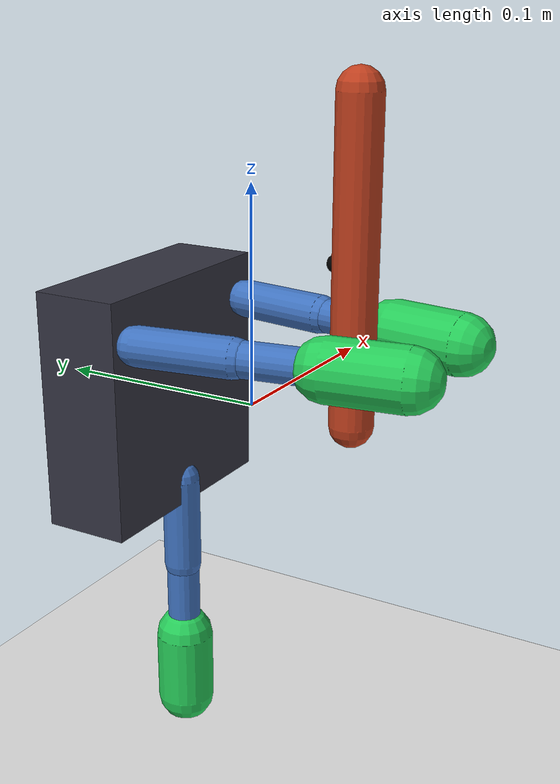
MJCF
<mujoco model="three_finger_rod_revolute">
  <!-- Arm A: rod spins on a hard hinge about its long axis; tip fixed in world. -->
  <compiler angle="radian" autolimits="true"/>
  <option timestep="0.002" integrator="implicitfast" iterations="80" ls_iterations="40" cone="elliptic" gravity="0 0 -9.81"/>
  <size njmax="1000" nconmax="200"/>
  <default>
    <joint damping="0.15" armature="0.01"/>
    <geom friction="1.8 0.05 0.001" condim="4" solref="0.008 1" solimp="0.95 0.99 0.001"/>
    <position kp="28" kv="2.5" ctrllimited="true" ctrlrange="-1.5 1.5"/>
  </default>
  <asset>
    <material name="rodmat" rgba="0.75 0.25 0.12 1"/>
    <material name="finger" rgba="0.25 0.45 0.75 1"/>
    <material name="tip" rgba="0.15 0.8 0.35 1"/>
  </asset>
  <worldbody>
    <light pos="0 -0.5 0.8" dir="0 0.4 -1" diffuse="0.8 0.8 0.8"/>
    <geom name="floor" type="plane" size="1 1 0.1" pos="0 0 -0.20" rgba="0.9 0.9 0.9 1"/>
    <body name="palm" pos="0 0 0">
      <geom type="box" size="0.055 0.02 0.055" pos="0 0.055 0" rgba="0.2 0.2 0.25 1" contype="0" conaffinity="0"/>
      <body name="finger0" pos="-0.045 0.03 0.035" euler="0 0 0.15">
        <joint name="f0_j0" axis="0 0 1" range="-1.2 1.2"/>
        <geom type="capsule" fromto="0 0 0 0 -0.045 0" size="0.009" material="finger"/>
        <body pos="0 -0.045 0"><joint name="f0_j1" axis="0 0 1" range="-1.5 1.2"/>
          <geom type="capsule" fromto="0 0 0 0 -0.04 0" size="0.008" material="finger"/>
          <body pos="0 -0.04 0"><joint name="f0_j2" axis="0 0 1" range="-1.5 1.2"/>
            <geom name="tip0" type="capsule" fromto="0 0 0 0 -0.035 0" size="0.014" material="tip"/>
            <site name="tip0_site" pos="0 -0.035 0" size="0.004"/>
          </body>
        </body>
      </body>
      <body name="finger1" pos="0.045 0.03 0.035" euler="0 0 -0.15">
        <joint name="f1_j0" axis="0 0 1" range="-1.2 1.2"/>
        <geom type="capsule" fromto="0 0 0 0 -0.045 0" size="0.009" material="finger"/>
        <body pos="0 -0.045 0"><joint name="f1_j1" axis="0 0 1" range="-1.5 1.2"/>
          <geom type="capsule" fromto="0 0 0 0 -0.04 0" size="0.008" material="finger"/>
          <body pos="0 -0.04 0"><joint name="f1_j2" axis="0 0 1" range="-1.5 1.2"/>
            <geom name="tip1" type="capsule" fromto="0 0 0 0 -0.035 0" size="0.014" material="tip"/>
            <site name="tip1_site" pos="0 -0.035 0" size="0.004"/>
          </body>
        </body>
      </body>
      <body name="finger2" pos="0 0.04 -0.045" euler="1.5708 0 0">
        <joint name="f2_j0" axis="1 0 0" range="-1.2 1.2"/>
        <geom type="capsule" fromto="0 0 0 0 -0.045 0" size="0.009" material="finger"/>
        <body pos="0 -0.045 0"><joint name="f2_j1" axis="0 0 1" range="-1.5 1.2"/>
          <geom type="capsule" fromto="0 0 0 0 -0.04 0" size="0.008" material="finger"/>
          <body pos="0 -0.04 0"><joint name="f2_j2" axis="0 0 1" range="-1.5 1.2"/>
            <geom name="tip2" type="capsule" fromto="0 0 0 0 -0.035 0" size="0.014" material="tip"/>
            <site name="tip2_site" pos="0 -0.035 0" size="0.004"/>
          </body>
        </body>
      </body>
    </body>
    <!-- Mount at hang tip; hinge axis world -Z = rod long axis after Ry90. -->
    <body name="rod_mount" pos="0 -0.05 0.07">
      <geom type="sphere" size="0.004" rgba="0.4 0.4 0.4 0.3" contype="0" conaffinity="0"/>
      <body name="rod" pos="0 0 0" quat="0.7071068 0 0.7071068 0">
        <!-- Local +x is rod long axis; hinge at tip (local -x). -->
        <joint name="rod_hinge" type="hinge" pos="-0.07 0 0" axis="1 0 0" damping="0.02" armature="0.001"/>
        <geom name="rod_geom" type="capsule" fromto="-0.07 0 0 0.07 0 0" size="0.01" density="350" material="rodmat"/>
        <site name="rod_tip" pos="-0.07 0 0" size="0.005" rgba="1 1 0 1"/>
        <site name="rod_axis_mark" pos="0 0.009 0" size="0.004" rgba="0 0 0 1"/>
      </body>
    </body>
    <site name="tip_target" pos="0 -0.05 0.07" size="0.007" rgba="1 0 1 0.45"/>
  </worldbody>
  <actuator>
    <position name="a0" joint="f0_j0"/><position name="a1" joint="f0_j1"/><position name="a2" joint="f0_j2"/>
    <position name="a3" joint="f1_j0"/><position name="a4" joint="f1_j1"/><position name="a5" joint="f1_j2"/>
    <position name="a6" joint="f2_j0"/><position name="a7" joint="f2_j1"/><position name="a8" joint="f2_j2"/>
  </actuator>
  <sensor>
    <touch name="touch0" site="tip0_site"/><touch name="touch1" site="tip1_site"/><touch name="touch2" site="tip2_site"/>
    <framepos name="rod_tip_pos" objtype="site" objname="rod_tip"/>
    <framequat name="rod_quat" objtype="body" objname="rod"/>
    <framelinvel name="rod_linvel" objtype="body" objname="rod"/>
    <frameangvel name="rod_angvel" objtype="body" objname="rod"/>
    <jointpos name="rod_hinge_pos" joint="rod_hinge"/>
    <jointvel name="rod_hinge_vel" joint="rod_hinge"/>
  </sensor>
</mujoco>
